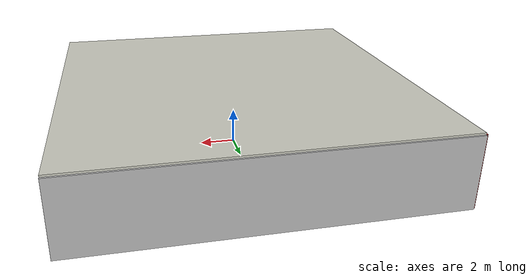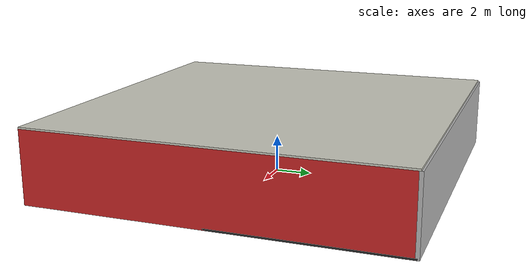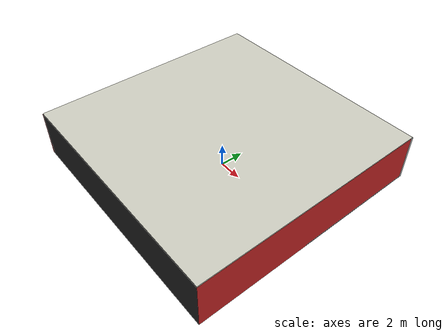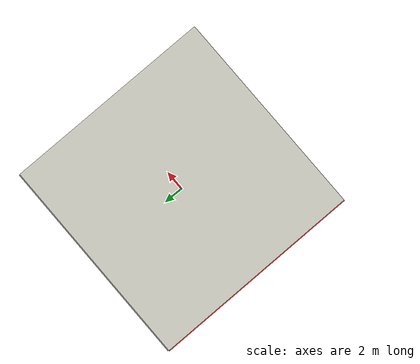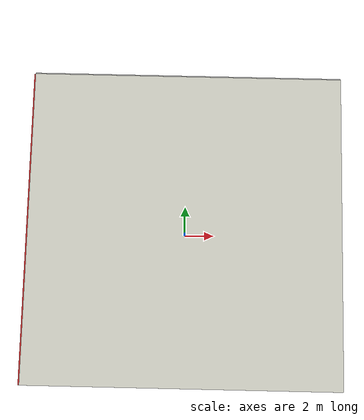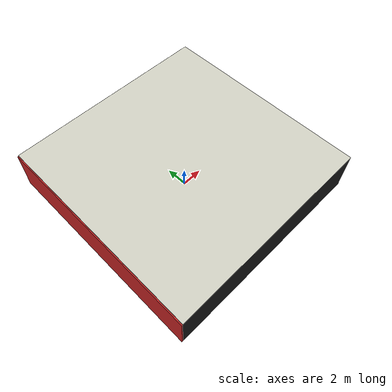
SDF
<sdf version="1.4">
 <world name="default">
  <physics type="ode">
   <max_step_size>0.001</max_step_size>
   <real_time_factor>1</real_time_factor>
   <real_time_update_rate>1000</real_time_update_rate>
   <gravity>0 0 -9.8</gravity>
  </physics>
  <scene><ambient>0.4 0.4 0.4 1</ambient><background>0.7 0.7 0.7 1</background><shadows>1</shadows></scene>
  <model name="Surrounding">
   <static>1</static>
   <link name="Ceiling">
    <collision name="Ceiling_Collision"><geometry><box><size>20 20 0.1</size></box></geometry></collision>
    <visual name="Ceiling_Visual">
     <geometry><box><size>20 20 0.1</size></box></geometry>
     <material>
      <script><uri>file://media/materials/scripts/gazebo.material</uri><name>Gazebo/PaintedWall</name></script>
     </material>
    </visual>
    <pose>0 0 4.05 0 0 0</pose>
   </link>
   <link name="Wall_South">
    <collision name="Wall_South_Collision">
     <geometry><box><size>20 0 4</size></box></geometry>
     <pose>0 0 2 0 -0 0</pose>
    </collision>
    <visual name="Wall_South_Visual">
     <pose>0 0 2 0 -0 0</pose>
     <geometry><box><size>20 0 4</size></box></geometry>
     <material>
      <script><uri>file://media/materials/scripts/gazebo.material</uri><name>Gazebo/FlatBlack</name></script>
     </material>
    </visual>
    <velocity_decay><linear>0</linear><angular>0</angular></velocity_decay>
    <pose>0 -10 0 0 -0 0</pose>
   </link>
   <link name="Wall_East">
    <collision name="Wall_21_Collision">
     <geometry><box><size>20 0 4</size></box></geometry>
     <pose>0 0 2 0 -0 0</pose>
    </collision>
    <visual name="Wall_21_Visual">
     <pose>0 0 2 0 -0 0</pose>
     <geometry><box><size>20 0 4</size></box></geometry>
     <material>
      <script><uri>file://media/materials/scripts/gazebo.material</uri><name>Gazebo/Red</name></script>
     </material>
    </visual>
    <velocity_decay><linear>0</linear><angular>0</angular></velocity_decay>
    <pose>10 0 0 0 -0 1.5708</pose>
   </link>
   <link name="Wall_North">
    <collision name="Wall_22_Collision">
     <geometry><box><size>20 0.2 4</size></box></geometry>
     <pose>0 0 2 0 -0 0</pose>
    </collision>
    <visual name="Wall_22_Visual">
     <pose>0 0 2 0 -0 0</pose>
     <geometry><box><size>20 0.2 4</size></box></geometry>
     <material>
      <script><uri>file://media/materials/scripts/gazebo.material</uri><name>Gazebo/Pioneer2Body</name></script>
     </material>
    </visual>
    <velocity_decay><linear>0</linear><angular>0</angular></velocity_decay>
    <pose>0 10 0 0 -0 0</pose>
   </link>
   <link name="Wall_West">
    <collision name="Wall_23_Collision">
     <geometry><box><size>20 0.2 4</size></box></geometry>
     <pose>0 0 2 0 -0 0</pose>
    </collision>
    <visual name="Wall_23_Visual">
     <pose>0 0 2 0 -0 0</pose>
     <geometry><box><size>20 0.2 4</size></box></geometry>
     <material>
      <script><uri>file://media/materials/scripts/gazebo.material</uri><name>Gazebo/RedGlow</name></script>
     </material>
    </visual>
    <velocity_decay><linear>0</linear><angular>0</angular></velocity_decay>
    <pose>-10 0 0 0 0 -1.5708</pose>
   </link>
   <link name="Ground_link">
    <collision name="collision">
     <pose>0 0 .05 0 -0 0</pose>
     <geometry><box><size>20 20 0.1</size></box></geometry>
    </collision>
    <visual name="visual">
     <pose>0 0 .05 0 -0 0</pose>
     <geometry><box><size>20 20 0.1</size></box></geometry>
     <material>
      <script><uri>file://media/materials/scripts/gazebo.material</uri><name>Gazebo/Black</name></script>
     </material>
    </visual>
   </link>
   <static>1</static>
  </model>
  <spherical_coordinates>
   <surface_model>EARTH_WGS84</surface_model>
   <latitude_deg>0</latitude_deg>
   <longitude_deg>0</longitude_deg>
   <elevation>0</elevation>
   <heading_deg>0</heading_deg>
  </spherical_coordinates>
  <light name="lightball_0" type="diffuse">
   <diffuse>0.8 0.8 0.8 1</diffuse>
   <specular>0.2 0.2 0.2 1</specular>
   <attenuation>
    <range>100</range>
    <constant>0.7</constant>
    <linear>0.01</linear>
    <quadratic>0.001</quadratic>
   </attenuation>
   <direction>-0.5 0.1 -0.9</direction>
   <pose>-7.16131529848 4.43548441496 3.23119202767 0 0 0</pose>
  </light>
  <light name="lightball_1" type="diffuse">
   <diffuse>0.8 0.8 0.8 1</diffuse>
   <specular>0.2 0.2 0.2 1</specular>
   <attenuation>
    <range>100</range>
    <constant>0.7</constant>
    <linear>0.01</linear>
    <quadratic>0.001</quadratic>
   </attenuation>
   <direction>-0.5 0.1 -0.9</direction>
   <pose>-5.2910960374 -9.8658627801 1.12279297958 0 0 0</pose>
  </light>
  <light name="lightball_2" type="diffuse">
   <diffuse>0.8 0.8 0.8 1</diffuse>
   <specular>0.2 0.2 0.2 1</specular>
   <attenuation>
    <range>100</range>
    <constant>0.7</constant>
    <linear>0.01</linear>
    <quadratic>0.001</quadratic>
   </attenuation>
   <direction>-0.5 0.1 -0.9</direction>
   <pose>6.23156147346 -6.13977394908 0.690043174467 0 0 0</pose>
  </light>
  <light name="lightball_3" type="diffuse">
   <diffuse>0.8 0.8 0.8 1</diffuse>
   <specular>0.2 0.2 0.2 1</specular>
   <attenuation>
    <range>100</range>
    <constant>0.7</constant>
    <linear>0.01</linear>
    <quadratic>0.001</quadratic>
   </attenuation>
   <direction>-0.5 0.1 -0.9</direction>
   <pose>1.44813028789 8.09677109242 1.81090261216 0 0 0</pose>
  </light>
  <light name="lightball_4" type="diffuse">
   <diffuse>0.8 0.8 0.8 1</diffuse>
   <specular>0.2 0.2 0.2 1</specular>
   <attenuation>
    <range>100</range>
    <constant>0.7</constant>
    <linear>0.01</linear>
    <quadratic>0.001</quadratic>
   </attenuation>
   <direction>-0.5 0.1 -0.9</direction>
   <pose>-7.45846916665 2.34377881347 3.26223224581 0 0 0</pose>
  </light>
  <light name="lightball_5" type="diffuse">
   <diffuse>0.8 0.8 0.8 1</diffuse>
   <specular>0.2 0.2 0.2 1</specular>
   <attenuation>
    <range>100</range>
    <constant>0.7</constant>
    <linear>0.01</linear>
    <quadratic>0.001</quadratic>
   </attenuation>
   <direction>-0.5 0.1 -0.9</direction>
   <pose>3.90350327269 7.88197531149 3.08372641215 0 0 0</pose>
  </light>
  <light name="lightball_6" type="diffuse">
   <diffuse>0.8 0.8 0.8 1</diffuse>
   <specular>0.2 0.2 0.2 1</specular>
   <attenuation>
    <range>100</range>
    <constant>0.7</constant>
    <linear>0.01</linear>
    <quadratic>0.001</quadratic>
   </attenuation>
   <direction>-0.5 0.1 -0.9</direction>
   <pose>-6.44986794698 -0.865194333142 2.22746640898 0 0 0</pose>
  </light>
  <light name="lightball_7" type="diffuse">
   <diffuse>0.8 0.8 0.8 1</diffuse>
   <specular>0.2 0.2 0.2 1</specular>
   <attenuation>
    <range>100</range>
    <constant>0.7</constant>
    <linear>0.01</linear>
    <quadratic>0.001</quadratic>
   </attenuation>
   <direction>-0.5 0.1 -0.9</direction>
   <pose>-9.52450663682 6.22542413444 3.61581461305 0 0 0</pose>
  </light>
  <light name="lightball_8" type="diffuse">
   <diffuse>0.8 0.8 0.8 1</diffuse>
   <specular>0.2 0.2 0.2 1</specular>
   <attenuation>
    <range>100</range>
    <constant>0.7</constant>
    <linear>0.01</linear>
    <quadratic>0.001</quadratic>
   </attenuation>
   <direction>-0.5 0.1 -0.9</direction>
   <pose>-1.66601239783 -3.26036419773 0.976945495744 0 0 0</pose>
  </light>
  <light name="lightball_9" type="diffuse">
   <diffuse>0.8 0.8 0.8 1</diffuse>
   <specular>0.2 0.2 0.2 1</specular>
   <attenuation>
    <range>100</range>
    <constant>0.7</constant>
    <linear>0.01</linear>
    <quadratic>0.001</quadratic>
   </attenuation>
   <direction>-0.5 0.1 -0.9</direction>
   <pose>9.15813454666 -0.277369588861 1.54854529326 0 0 0</pose>
  </light>
  <light name="lightball_10" type="diffuse">
   <diffuse>0.8 0.8 0.8 1</diffuse>
   <specular>0.2 0.2 0.2 1</specular>
   <attenuation>
    <range>100</range>
    <constant>0.7</constant>
    <linear>0.01</linear>
    <quadratic>0.001</quadratic>
   </attenuation>
   <direction>-0.5 0.1 -0.9</direction>
   <pose>-8.16830895197 5.57118880802 0.77020296058 0 0 0</pose>
  </light>
  <light name="lightball_11" type="diffuse">
   <diffuse>0.8 0.8 0.8 1</diffuse>
   <specular>0.2 0.2 0.2 1</specular>
   <attenuation>
    <range>100</range>
    <constant>0.7</constant>
    <linear>0.01</linear>
    <quadratic>0.001</quadratic>
   </attenuation>
   <direction>-0.5 0.1 -0.9</direction>
   <pose>-8.76390554855 -9.62690821859 1.68160486696 0 0 0</pose>
  </light>
  <light name="lightball_12" type="diffuse">
   <diffuse>0.8 0.8 0.8 1</diffuse>
   <specular>0.2 0.2 0.2 1</specular>
   <attenuation>
    <range>100</range>
    <constant>0.7</constant>
    <linear>0.01</linear>
    <quadratic>0.001</quadratic>
   </attenuation>
   <direction>-0.5 0.1 -0.9</direction>
   <pose>-1.1000661349 2.12435723745 1.8098237164 0 0 0</pose>
  </light>
  <light name="lightball_13" type="diffuse">
   <diffuse>0.8 0.8 0.8 1</diffuse>
   <specular>0.2 0.2 0.2 1</specular>
   <attenuation>
    <range>100</range>
    <constant>0.7</constant>
    <linear>0.01</linear>
    <quadratic>0.001</quadratic>
   </attenuation>
   <direction>-0.5 0.1 -0.9</direction>
   <pose>8.56040669288 0.47301949304 2.15010459451 0 0 0</pose>
  </light>
  <include><uri>model://cabinet</uri><pose>-4.71978788628 -1.72114391598 0 0 0 0.821337851837</pose></include>
  <include><uri>model://cabinet</uri><pose>1.30411331549 -5.07080497198 0 0 0 0.0854670812222</pose></include>
  <include><uri>model://cabinet</uri><pose>4.37057334637 4.7693863204 0 0 0 1.37761638285</pose></include>
 </world>
</sdf>

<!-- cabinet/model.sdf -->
<sdf version="1.5">
  <model name="cabinet">
    <static>true</static>
    <link name="cabinet_bottom_plate">
      <inertial>
        <pose>0 0 -1 0 0 0</pose>
        <inertia>
          <ixx>2.050000</ixx>
          <ixy>0</ixy>
          <ixz>0</ixz>
          <iyy>2.050000</iyy>
          <iyz>0</iyz>
          <izz>2.050000</izz>
        </inertia>
        <mass>25.000000</mass>
      </inertial>
      <collision name="cabinet_bottom_plate_geom">
        <pose>0 0 0.010000 0 0 0</pose>
        <geometry>
          <box>
            <size>0.450000 0.450000 0.020000</size>
          </box>
        </geometry>
      </collision>
      <visual name="cabinet_bottom_plate_geom_visual">
        <pose>0 0 0.010000 0 0 0</pose>
        <geometry>
          <box>
            <size>0.450000 0.450000 0.020000</size>
          </box>
        </geometry>
        <material>
          <script>
            <uri>model://media/materials/scripts/gazebo.material</uri>
            <name>Gazebo/Wood</name>
          </script>
        </material>
      </visual>
      <collision name="cabinet_bottom_plate_geom_cabinet_back_plate">
        <pose>0.235000 0 0.510000 0 0 0</pose>
        <geometry>
          <box>
            <size>0.020000 0.450000 1.020000</size>
          </box>
        </geometry>
      </collision>
      <visual name="cabinet_bottom_plate_geom_cabinet_back_plate_visual">
        <pose>0.235000 0 0.510000 0 0 0</pose>
        <geometry>
          <box>
            <size>0.020000 0.450000 1.020000</size>
          </box>
        </geometry>
        <material>
          <script>
            <uri>model://media/materials/scripts/gazebo.material</uri>
            <name>Gazebo/Wood</name>
          </script>
        </material>
      </visual>
      <collision name="cabinet_bottom_plate_geom_cabinet_left_plate">
        <pose>0 0.235000 0.510000 0 0 0</pose>
        <geometry>
          <box>
            <size>0.450000 0.020000 1.020000</size>
          </box>
        </geometry>
      </collision>
      <visual name="cabinet_bottom_plate_geom_cabinet_left_plate_visual">
        <pose>0 0.235000 0.510000 0 0 0</pose>
        <geometry>
          <box>
            <size>0.450000 0.020000 1.020000</size>
          </box>
        </geometry>
        <material>
          <script>
            <uri>model://media/materials/scripts/gazebo.material</uri>
            <name>Gazebo/Wood</name>
          </script>
        </material>
      </visual>
      <collision name="cabinet_bottom_plate_geom_cabinet_middle_plate">
        <pose>0 0 0.510000 0 0 0</pose>
        <geometry>
          <box>
            <size>0.450000 0.450000 0.020000</size>
          </box>
        </geometry>
      </collision>
      <visual name="cabinet_bottom_plate_geom_cabinet_middle_plate_visual">
        <pose>0 0 0.510000 0 0 0</pose>
        <geometry>
          <box>
            <size>0.450000 0.450000 0.020000</size>
          </box>
        </geometry>
        <material>
          <script>
            <uri>model://media/materials/scripts/gazebo.material</uri>
            <name>Gazebo/Wood</name>
          </script>
        </material>
      </visual>
      <collision name="cabinet_bottom_plate_geom_cabinet_right_plate">
        <pose>0 -0.235000 0.510000 0 0 0</pose>
        <geometry>
          <box>
            <size>0.450000 0.020000 1.020000</size>
          </box>
        </geometry>
      </collision>
      <visual name="cabinet_bottom_plate_geom_cabinet_right_plate_visual">
        <pose>0 -0.235000 0.510000 0 0 0</pose>
        <geometry>
          <box>
            <size>0.450000 0.020000 1.020000</size>
          </box>
        </geometry>
        <material>
          <script>
            <uri>model://media/materials/scripts/gazebo.material</uri>
            <name>Gazebo/Wood</name>
          </script>
        </material>
      </visual>
      <collision name="cabinet_bottom_plate_geom_cabinet_top_plate">
        <pose>0 0 1.010000 0 0 0</pose>
        <geometry>
          <box>
            <size>0.450000 0.450000 0.020000</size>
          </box>
        </geometry>
      </collision>
      <visual name="cabinet_bottom_plate_geom_cabinet_top_plate_visual">
        <pose>0 0 1.010000 0 0 0</pose>
        <geometry>
          <box>
            <size>0.450000 0.450000 0.020000</size>
          </box>
        </geometry>
        <material>
          <script>
            <uri>model://media/materials/scripts/gazebo.material</uri>
            <name>Gazebo/Wood</name>
          </script>
        </material>
      </visual>
    </link>
  </model>
</sdf>
